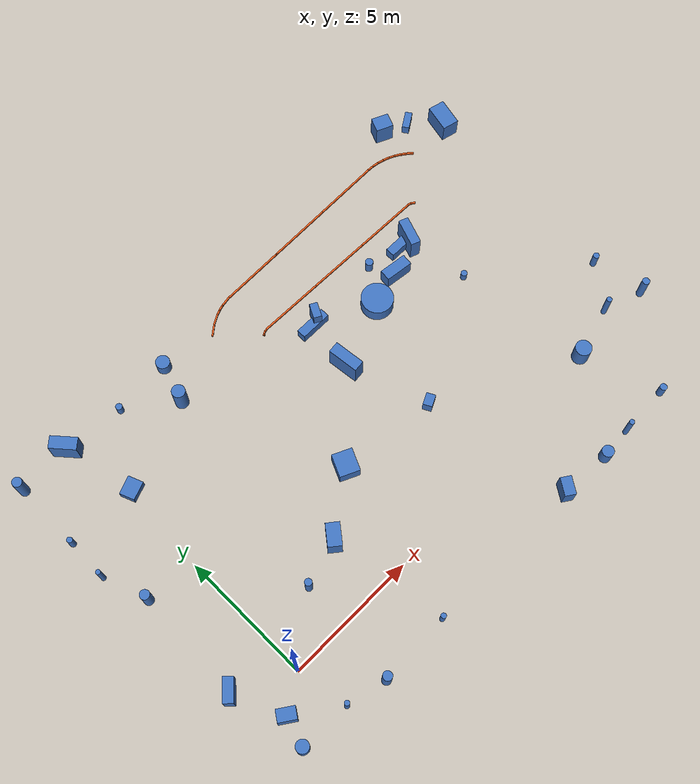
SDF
<sdf version="1.9">
 <world name="default">
  <model name="track_curb">
   <static>true</static>
   <link name="curb_link">
    <collision name="left0_0_0_collision">
     <pose>15.271344 9.368254 0.035000 0.000000 0.000000 2.502777</pose>
     <geometry><box><size>0.189289 0.060000 0.070000</size></box></geometry>
    </collision>
    <visual name="left0_0_0_visual">
     <pose>15.271344 9.368254 0.035000 0.000000 0.000000 2.502777</pose>
     <geometry><box><size>0.189289 0.060000 0.070000</size></box></geometry>
     <material><ambient>0.9 0.35 0.1 1</ambient><diffuse>0.9 0.35 0.1 1</diffuse></material>
    </visual>
    <collision name="left0_1_0_collision">
     <pose>15.157827 9.422156 0.035000 0.000000 0.000000 2.897335</pose>
     <geometry><box><size>0.187010 0.060000 0.070000</size></box></geometry>
    </collision>
    <visual name="left0_1_0_visual">
     <pose>15.157827 9.422156 0.035000 0.000000 0.000000 2.897335</pose>
     <geometry><box><size>0.187010 0.060000 0.070000</size></box></geometry>
     <material><ambient>0.9 0.35 0.1 1</ambient><diffuse>0.9 0.35 0.1 1</diffuse></material>
    </visual>
    <collision name="left0_2_0_collision">
     <pose>13.877469 9.456981 0.035000 0.000000 0.000000 3.125621</pose>
     <geometry><box><size>2.497787 0.060000 0.070000</size></box></geometry>
    </collision>
    <visual name="left0_2_0_visual">
     <pose>13.877469 9.456981 0.035000 0.000000 0.000000 3.125621</pose>
     <geometry><box><size>2.497787 0.060000 0.070000</size></box></geometry>
     <material><ambient>0.9 0.35 0.1 1</ambient><diffuse>0.9 0.35 0.1 1</diffuse></material>
    </visual>
    <collision name="left0_2_1_collision">
     <pose>11.439993 9.495915 0.035000 0.000000 0.000000 3.125621</pose>
     <geometry><box><size>2.497787 0.060000 0.070000</size></box></geometry>
    </collision>
    <visual name="left0_2_1_visual">
     <pose>11.439993 9.495915 0.035000 0.000000 0.000000 3.125621</pose>
     <geometry><box><size>2.497787 0.060000 0.070000</size></box></geometry>
     <material><ambient>0.9 0.35 0.1 1</ambient><diffuse>0.9 0.35 0.1 1</diffuse></material>
    </visual>
    <collision name="left0_2_2_collision">
     <pose>9.002516 9.534850 0.035000 0.000000 0.000000 3.125621</pose>
     <geometry><box><size>2.497787 0.060000 0.070000</size></box></geometry>
    </collision>
    <visual name="left0_2_2_visual">
     <pose>9.002516 9.534850 0.035000 0.000000 0.000000 3.125621</pose>
     <geometry><box><size>2.497787 0.060000 0.070000</size></box></geometry>
     <material><ambient>0.9 0.35 0.1 1</ambient><diffuse>0.9 0.35 0.1 1</diffuse></material>
    </visual>
    <collision name="left0_3_0_collision">
     <pose>7.711670 9.540087 0.035000 0.000000 0.000000 -2.946748</pose>
     <geometry><box><size>0.206997 0.060000 0.070000</size></box></geometry>
    </collision>
    <visual name="left0_3_0_visual">
     <pose>7.711670 9.540087 0.035000 0.000000 0.000000 -2.946748</pose>
     <geometry><box><size>0.206997 0.060000 0.070000</size></box></geometry>
     <material><ambient>0.9 0.35 0.1 1</ambient><diffuse>0.9 0.35 0.1 1</diffuse></material>
    </visual>
    <collision name="left0_4_0_collision">
     <pose>7.600947 9.503579 0.035000 0.000000 0.000000 -2.618331</pose>
     <geometry><box><size>0.149162 0.060000 0.070000</size></box></geometry>
    </collision>
    <visual name="left0_4_0_visual">
     <pose>7.600947 9.503579 0.035000 0.000000 0.000000 -2.618331</pose>
     <geometry><box><size>0.149162 0.060000 0.070000</size></box></geometry>
     <material><ambient>0.9 0.35 0.1 1</ambient><diffuse>0.9 0.35 0.1 1</diffuse></material>
    </visual>
    <collision name="left0_5_0_collision">
     <pose>7.551408 9.472403 0.035000 0.000000 0.000000 -2.457948</pose>
     <geometry><box><size>0.088178 0.060000 0.070000</size></box></geometry>
    </collision>
    <visual name="left0_5_0_visual">
     <pose>7.551408 9.472403 0.035000 0.000000 0.000000 -2.457948</pose>
     <geometry><box><size>0.088178 0.060000 0.070000</size></box></geometry>
     <material><ambient>0.9 0.35 0.1 1</ambient><diffuse>0.9 0.35 0.1 1</diffuse></material>
    </visual>
    <collision name="left0_6_0_collision">
     <pose>7.542045 9.458009 0.035000 0.000000 0.000000 -1.294159</pose>
     <geometry><box><size>0.071423 0.060000 0.070000</size></box></geometry>
    </collision>
    <visual name="left0_6_0_visual">
     <pose>7.542045 9.458009 0.035000 0.000000 0.000000 -1.294159</pose>
     <geometry><box><size>0.071423 0.060000 0.070000</size></box></geometry>
     <material><ambient>0.9 0.35 0.1 1</ambient><diffuse>0.9 0.35 0.1 1</diffuse></material>
    </visual>
    <collision name="right4_0_0_collision">
     <pose>16.748323 10.948203 0.035000 0.000000 0.000000 2.422302</pose>
     <geometry><box><size>0.272321 0.060000 0.070000</size></box></geometry>
    </collision>
    <visual name="right4_0_0_visual">
     <pose>16.748323 10.948203 0.035000 0.000000 0.000000 2.422302</pose>
     <geometry><box><size>0.272321 0.060000 0.070000</size></box></geometry>
     <material><ambient>0.9 0.35 0.1 1</ambient><diffuse>0.9 0.35 0.1 1</diffuse></material>
    </visual>
    <collision name="right4_1_0_collision">
     <pose>16.568221 11.090692 0.035000 0.000000 0.000000 2.515127</pose>
     <geometry><box><size>0.307473 0.060000 0.070000</size></box></geometry>
    </collision>
    <visual name="right4_1_0_visual">
     <pose>16.568221 11.090692 0.035000 0.000000 0.000000 2.515127</pose>
     <geometry><box><size>0.307473 0.060000 0.070000</size></box></geometry>
     <material><ambient>0.9 0.35 0.1 1</ambient><diffuse>0.9 0.35 0.1 1</diffuse></material>
    </visual>
    <collision name="right4_2_0_collision">
     <pose>16.361099 11.225360 0.035000 0.000000 0.000000 2.615095</pose>
     <geometry><box><size>0.307251 0.060000 0.070000</size></box></geometry>
    </collision>
    <visual name="right4_2_0_visual">
     <pose>16.361099 11.225360 0.035000 0.000000 0.000000 2.615095</pose>
     <geometry><box><size>0.307251 0.060000 0.070000</size></box></geometry>
     <material><ambient>0.9 0.35 0.1 1</ambient><diffuse>0.9 0.35 0.1 1</diffuse></material>
    </visual>
    <collision name="right4_3_0_collision">
     <pose>16.141768 11.338582 0.035000 0.000000 0.000000 2.715063</pose>
     <geometry><box><size>0.307028 0.060000 0.070000</size></box></geometry>
    </collision>
    <visual name="right4_3_0_visual">
     <pose>16.141768 11.338582 0.035000 0.000000 0.000000 2.715063</pose>
     <geometry><box><size>0.307028 0.060000 0.070000</size></box></geometry>
     <material><ambient>0.9 0.35 0.1 1</ambient><diffuse>0.9 0.35 0.1 1</diffuse></material>
    </visual>
    <collision name="right4_4_0_collision">
     <pose>15.929364 11.424333 0.035000 0.000000 0.000000 2.807892</pose>
     <geometry><box><size>0.271584 0.060000 0.070000</size></box></geometry>
    </collision>
    <visual name="right4_4_0_visual">
     <pose>15.929364 11.424333 0.035000 0.000000 0.000000 2.807892</pose>
     <geometry><box><size>0.271584 0.060000 0.070000</size></box></geometry>
     <material><ambient>0.9 0.35 0.1 1</ambient><diffuse>0.9 0.35 0.1 1</diffuse></material>
    </visual>
    <collision name="right4_5_0_collision">
     <pose>15.709660 11.488399 0.035000 0.000000 0.000000 2.900717</pose>
     <geometry><box><size>0.306614 0.060000 0.070000</size></box></geometry>
    </collision>
    <visual name="right4_5_0_visual">
     <pose>15.709660 11.488399 0.035000 0.000000 0.000000 2.900717</pose>
     <geometry><box><size>0.306614 0.060000 0.070000</size></box></geometry>
     <material><ambient>0.9 0.35 0.1 1</ambient><diffuse>0.9 0.35 0.1 1</diffuse></material>
    </visual>
    <collision name="right4_6_0_collision">
     <pose>15.467938 11.535116 0.035000 0.000000 0.000000 3.000685</pose>
     <geometry><box><size>0.306392 0.060000 0.070000</size></box></geometry>
    </collision>
    <visual name="right4_6_0_visual">
     <pose>15.467938 11.535116 0.035000 0.000000 0.000000 3.000685</pose>
     <geometry><box><size>0.306392 0.060000 0.070000</size></box></geometry>
     <material><ambient>0.9 0.35 0.1 1</ambient><diffuse>0.9 0.35 0.1 1</diffuse></material>
    </visual>
    <collision name="right4_7_0_collision">
     <pose>15.224878 11.557452 0.035000 0.000000 0.000000 3.100041</pose>
     <geometry><box><size>0.302380 0.060000 0.070000</size></box></geometry>
    </collision>
    <visual name="right4_7_0_visual">
     <pose>15.224878 11.557452 0.035000 0.000000 0.000000 3.100041</pose>
     <geometry><box><size>0.302380 0.060000 0.070000</size></box></geometry>
     <material><ambient>0.9 0.35 0.1 1</ambient><diffuse>0.9 0.35 0.1 1</diffuse></material>
    </visual>
    <collision name="right4_8_0_collision">
     <pose>13.857994 11.541765 0.035000 0.000000 0.000000 -3.124961</pose>
     <geometry><box><size>2.551941 0.060000 0.070000</size></box></geometry>
    </collision>
    <visual name="right4_8_0_visual">
     <pose>13.857994 11.541765 0.035000 0.000000 0.000000 -3.124961</pose>
     <geometry><box><size>2.551941 0.060000 0.070000</size></box></geometry>
     <material><ambient>0.9 0.35 0.1 1</ambient><diffuse>0.9 0.35 0.1 1</diffuse></material>
    </visual>
    <collision name="right4_8_1_collision">
     <pose>11.366398 11.500322 0.035000 0.000000 0.000000 -3.124961</pose>
     <geometry><box><size>2.551941 0.060000 0.070000</size></box></geometry>
    </collision>
    <visual name="right4_8_1_visual">
     <pose>11.366398 11.500322 0.035000 0.000000 0.000000 -3.124961</pose>
     <geometry><box><size>2.551941 0.060000 0.070000</size></box></geometry>
     <material><ambient>0.9 0.35 0.1 1</ambient><diffuse>0.9 0.35 0.1 1</diffuse></material>
    </visual>
    <collision name="right4_8_2_collision">
     <pose>8.874802 11.458879 0.035000 0.000000 0.000000 -3.124961</pose>
     <geometry><box><size>2.551941 0.060000 0.070000</size></box></geometry>
    </collision>
    <visual name="right4_8_2_visual">
     <pose>8.874802 11.458879 0.035000 0.000000 0.000000 -3.124961</pose>
     <geometry><box><size>2.551941 0.060000 0.070000</size></box></geometry>
     <material><ambient>0.9 0.35 0.1 1</ambient><diffuse>0.9 0.35 0.1 1</diffuse></material>
    </visual>
    <collision name="right4_9_0_collision">
     <pose>7.443772 11.406488 0.035000 0.000000 0.000000 -2.972256</pose>
     <geometry><box><size>0.435840 0.060000 0.070000</size></box></geometry>
    </collision>
    <visual name="right4_9_0_visual">
     <pose>7.443772 11.406488 0.035000 0.000000 0.000000 -2.972256</pose>
     <geometry><box><size>0.435840 0.060000 0.070000</size></box></geometry>
     <material><ambient>0.9 0.35 0.1 1</ambient><diffuse>0.9 0.35 0.1 1</diffuse></material>
    </visual>
    <collision name="right4_10_0_collision">
     <pose>7.160622 11.344637 0.035000 0.000000 0.000000 -2.842601</pose>
     <geometry><box><size>0.264927 0.060000 0.070000</size></box></geometry>
    </collision>
    <visual name="right4_10_0_visual">
     <pose>7.160622 11.344637 0.035000 0.000000 0.000000 -2.842601</pose>
     <geometry><box><size>0.264927 0.060000 0.070000</size></box></geometry>
     <material><ambient>0.9 0.35 0.1 1</ambient><diffuse>0.9 0.35 0.1 1</diffuse></material>
    </visual>
    <collision name="right4_11_0_collision">
     <pose>6.968035 11.275485 0.035000 0.000000 0.000000 -2.751091</pose>
     <geometry><box><size>0.264754 0.060000 0.070000</size></box></geometry>
    </collision>
    <visual name="right4_11_0_visual">
     <pose>6.968035 11.275485 0.035000 0.000000 0.000000 -2.751091</pose>
     <geometry><box><size>0.264754 0.060000 0.070000</size></box></geometry>
     <material><ambient>0.9 0.35 0.1 1</ambient><diffuse>0.9 0.35 0.1 1</diffuse></material>
    </visual>
    <collision name="right4_12_0_collision">
     <pose>6.710824 11.143423 0.035000 0.000000 0.000000 -2.621466</pose>
     <geometry><box><size>0.434623 0.060000 0.070000</size></box></geometry>
    </collision>
    <visual name="right4_12_0_visual">
     <pose>6.710824 11.143423 0.035000 0.000000 0.000000 -2.621466</pose>
     <geometry><box><size>0.434623 0.060000 0.070000</size></box></geometry>
     <material><ambient>0.9 0.35 0.1 1</ambient><diffuse>0.9 0.35 0.1 1</diffuse></material>
    </visual>
    <collision name="right4_13_0_collision">
     <pose>6.376118 10.911111 0.035000 0.000000 0.000000 -2.461604</pose>
     <geometry><box><size>0.502823 0.060000 0.070000</size></box></geometry>
    </collision>
    <visual name="right4_13_0_visual">
     <pose>6.376118 10.911111 0.035000 0.000000 0.000000 -2.461604</pose>
     <geometry><box><size>0.502823 0.060000 0.070000</size></box></geometry>
     <material><ambient>0.9 0.35 0.1 1</ambient><diffuse>0.9 0.35 0.1 1</diffuse></material>
    </visual>
   </link>
  </model>
  <model name="track_feature">
   <static>true</static>
   <link name="feature_link">
    <collision name="feat_box_1_collision">
     <pose>12.639290 7.755865 0.330038 0.000000 0.000000 3.019790</pose>
     <geometry><box><size>1.058222 0.423274 0.660077</size></box></geometry>
    </collision>
    <visual name="feat_box_1_visual">
     <pose>12.639290 7.755865 0.330038 0.000000 0.000000 3.019790</pose>
     <geometry><box><size>1.058222 0.423274 0.660077</size></box></geometry>
     <material><ambient>0.25 0.45 0.75 1</ambient><diffuse>0.25 0.45 0.75 1</diffuse></material>
    </visual>
    <collision name="feat_box_2_collision">
     <pose>0.279351 8.474213 0.176076 0.000000 0.000000 -1.197004</pose>
     <geometry><box><size>0.574998 0.694214 0.352152</size></box></geometry>
    </collision>
    <visual name="feat_box_2_visual">
     <pose>0.279351 8.474213 0.176076 0.000000 0.000000 -1.197004</pose>
     <geometry><box><size>0.574998 0.694214 0.352152</size></box></geometry>
     <material><ambient>0.25 0.45 0.75 1</ambient><diffuse>0.25 0.45 0.75 1</diffuse></material>
    </visual>
    <collision name="feat_box_4_collision">
     <pose>10.784718 -2.181877 0.403142 0.000000 0.000000 2.555760</pose>
     <geometry><box><size>0.409974 0.674986 0.806284</size></box></geometry>
    </collision>
    <visual name="feat_box_4_visual">
     <pose>10.784718 -2.181877 0.403142 0.000000 0.000000 2.555760</pose>
     <geometry><box><size>0.409974 0.674986 0.806284</size></box></geometry>
     <material><ambient>0.25 0.45 0.75 1</ambient><diffuse>0.25 0.45 0.75 1</diffuse></material>
    </visual>
    <collision name="feat_box_5_collision">
     <pose>16.598004 12.318466 0.431856 0.000000 0.000000 1.157170</pose>
     <geometry><box><size>0.557473 0.669891 0.863711</size></box></geometry>
    </collision>
    <visual name="feat_box_5_visual">
     <pose>16.598004 12.318466 0.431856 0.000000 0.000000 1.157170</pose>
     <geometry><box><size>0.557473 0.669891 0.863711</size></box></geometry>
     <material><ambient>0.25 0.45 0.75 1</ambient><diffuse>0.25 0.45 0.75 1</diffuse></material>
    </visual>
    <collision name="feat_box_7_collision">
     <pose>3.940306 2.268397 0.467089 0.000000 0.000000 0.898028</pose>
     <geometry><box><size>0.836948 0.509742 0.934179</size></box></geometry>
    </collision>
    <visual name="feat_box_7_visual">
     <pose>3.940306 2.268397 0.467089 0.000000 0.000000 0.898028</pose>
     <geometry><box><size>0.836948 0.509742 0.934179</size></box></geometry>
     <material><ambient>0.25 0.45 0.75 1</ambient><diffuse>0.25 0.45 0.75 1</diffuse></material>
    </visual>
    <collision name="feat_box_8_collision">
     <pose>-2.042347 1.082708 0.440779 0.000000 0.000000 0.819688</pose>
     <geometry><box><size>0.861431 0.366135 0.881558</size></box></geometry>
    </collision>
    <visual name="feat_box_8_visual">
     <pose>-2.042347 1.082708 0.440779 0.000000 0.000000 0.819688</pose>
     <geometry><box><size>0.861431 0.366135 0.881558</size></box></geometry>
     <material><ambient>0.25 0.45 0.75 1</ambient><diffuse>0.25 0.45 0.75 1</diffuse></material>
    </visual>
    <collision name="feat_box_10_collision">
     <pose>9.809354 3.382879 0.254682 0.000000 0.000000 -1.108631</pose>
     <geometry><box><size>0.347329 0.461572 0.509363</size></box></geometry>
    </collision>
    <visual name="feat_box_10_visual">
     <pose>9.809354 3.382879 0.254682 0.000000 0.000000 -1.108631</pose>
     <geometry><box><size>0.347329 0.461572 0.509363</size></box></geometry>
     <material><ambient>0.25 0.45 0.75 1</ambient><diffuse>0.25 0.45 0.75 1</diffuse></material>
    </visual>
    <collision name="feat_box_12_collision">
     <pose>-0.348791 11.138863 0.482820 0.000000 0.000000 -0.855922</pose>
     <geometry><box><size>0.993537 0.458591 0.965639</size></box></geometry>
    </collision>
    <visual name="feat_box_12_visual">
     <pose>-0.348791 11.138863 0.482820 0.000000 0.000000 -0.855922</pose>
     <geometry><box><size>0.993537 0.458591 0.965639</size></box></geometry>
     <material><ambient>0.25 0.45 0.75 1</ambient><diffuse>0.25 0.45 0.75 1</diffuse></material>
    </visual>
    <collision name="feat_box_15_collision">
     <pose>6.080824 3.821925 0.294301 0.000000 0.000000 1.138007</pose>
     <geometry><box><size>0.858884 0.764687 0.588602</size></box></geometry>
    </collision>
    <visual name="feat_box_15_visual">
     <pose>6.080824 3.821925 0.294301 0.000000 0.000000 1.138007</pose>
     <geometry><box><size>0.858884 0.764687 0.588602</size></box></geometry>
     <material><ambient>0.25 0.45 0.75 1</ambient><diffuse>0.25 0.45 0.75 1</diffuse></material>
    </visual>
    <collision name="feat_box_16_collision">
     <pose>-1.252297 -0.781731 0.395862 0.000000 0.000000 -2.167370</pose>
     <geometry><box><size>0.445202 0.665797 0.791723</size></box></geometry>
    </collision>
    <visual name="feat_box_16_visual">
     <pose>-1.252297 -0.781731 0.395862 0.000000 0.000000 -2.167370</pose>
     <geometry><box><size>0.445202 0.665797 0.791723</size></box></geometry>
     <material><ambient>0.25 0.45 0.75 1</ambient><diffuse>0.25 0.45 0.75 1</diffuse></material>
    </visual>
    <collision name="feat_box_18_collision">
     <pose>8.748058 6.458404 0.530079 0.000000 0.000000 1.677954</pose>
     <geometry><box><size>1.177132 0.425119 1.060159</size></box></geometry>
    </collision>
    <visual name="feat_box_18_visual">
     <pose>8.748058 6.458404 0.530079 0.000000 0.000000 1.677954</pose>
     <geometry><box><size>1.177132 0.425119 1.060159</size></box></geometry>
     <material><ambient>0.25 0.45 0.75 1</ambient><diffuse>0.25 0.45 0.75 1</diffuse></material>
    </visual>
    <collision name="feat_box_24_collision">
     <pose>9.284548 8.540532 0.457994 0.000000 0.000000 -0.491147</pose>
     <geometry><box><size>0.302029 0.562229 0.915989</size></box></geometry>
    </collision>
    <visual name="feat_box_24_visual">
     <pose>9.284548 8.540532 0.457994 0.000000 0.000000 -0.491147</pose>
     <geometry><box><size>0.302029 0.562229 0.915989</size></box></geometry>
     <material><ambient>0.25 0.45 0.75 1</ambient><diffuse>0.25 0.45 0.75 1</diffuse></material>
    </visual>
    <collision name="feat_box_25_collision">
     <pose>18.518752 10.916348 0.397110 0.000000 0.000000 -1.805734</pose>
     <geometry><box><size>1.033357 0.635933 0.794219</size></box></geometry>
    </collision>
    <visual name="feat_box_25_visual">
     <pose>18.518752 10.916348 0.397110 0.000000 0.000000 -1.805734</pose>
     <geometry><box><size>1.033357 0.635933 0.794219</size></box></geometry>
     <material><ambient>0.25 0.45 0.75 1</ambient><diffuse>0.25 0.45 0.75 1</diffuse></material>
    </visual>
    <collision name="feat_box_26_collision">
     <pose>13.912323 8.311295 0.505113 0.000000 0.000000 -1.924617</pose>
     <geometry><box><size>1.071921 0.373841 1.010225</size></box></geometry>
    </collision>
    <visual name="feat_box_26_visual">
     <pose>13.912323 8.311295 0.505113 0.000000 0.000000 -1.924617</pose>
     <geometry><box><size>1.071921 0.373841 1.010225</size></box></geometry>
     <material><ambient>0.25 0.45 0.75 1</ambient><diffuse>0.25 0.45 0.75 1</diffuse></material>
    </visual>
    <collision name="feat_box_36_collision">
     <pose>17.582097 11.913602 0.199766 0.000000 0.000000 0.580317</pose>
     <geometry><box><size>0.678236 0.270606 0.399531</size></box></geometry>
    </collision>
    <visual name="feat_box_36_visual">
     <pose>17.582097 11.913602 0.199766 0.000000 0.000000 0.580317</pose>
     <geometry><box><size>0.678236 0.270606 0.399531</size></box></geometry>
     <material><ambient>0.25 0.45 0.75 1</ambient><diffuse>0.25 0.45 0.75 1</diffuse></material>
    </visual>
    <collision name="landmark_1_collision">
     <pose>9.000000 8.400000 0.225000 0.000000 0.000000 0.000000</pose>
     <geometry><box><size>1.200000 0.350000 0.450000</size></box></geometry>
    </collision>
    <visual name="landmark_1_visual">
     <pose>9.000000 8.400000 0.225000 0.000000 0.000000 0.000000</pose>
     <geometry><box><size>1.200000 0.350000 0.450000</size></box></geometry>
     <material><ambient>0.25 0.45 0.75 1</ambient><diffuse>0.25 0.45 0.75 1</diffuse></material>
    </visual>
    <collision name="landmark_2_collision">
     <pose>13.600000 8.400000 0.225000 0.000000 0.000000 0.000000</pose>
     <geometry><box><size>1.200000 0.350000 0.450000</size></box></geometry>
    </collision>
    <visual name="landmark_2_visual">
     <pose>13.600000 8.400000 0.225000 0.000000 0.000000 0.000000</pose>
     <geometry><box><size>1.200000 0.350000 0.450000</size></box></geometry>
     <material><ambient>0.25 0.45 0.75 1</ambient><diffuse>0.25 0.45 0.75 1</diffuse></material>
    </visual>
    <collision name="feat_cyl_3_collision">
     <pose>4.600586 -2.188813 0.329742 0.000000 0.000000 0.000000</pose>
     <geometry><cylinder><radius>0.097606</radius><length>0.659485</length></cylinder></geometry>
    </collision>
    <visual name="feat_cyl_3_visual">
     <pose>4.600586 -2.188813 0.329742 0.000000 0.000000 0.000000</pose>
     <geometry><cylinder><radius>0.097606</radius><length>0.659485</length></cylinder></geometry>
     <material><ambient>0.25 0.45 0.75 1</ambient><diffuse>0.25 0.45 0.75 1</diffuse></material>
    </visual>
    <collision name="feat_cyl_6_collision">
     <pose>16.949693 1.321475 0.538627 0.000000 0.000000 0.000000</pose>
     <geometry><cylinder><radius>0.100593</radius><length>1.077254</length></cylinder></geometry>
    </collision>
    <visual name="feat_cyl_6_visual">
     <pose>16.949693 1.321475 0.538627 0.000000 0.000000 0.000000</pose>
     <geometry><cylinder><radius>0.100593</radius><length>1.077254</length></cylinder></geometry>
     <material><ambient>0.25 0.45 0.75 1</ambient><diffuse>0.25 0.45 0.75 1</diffuse></material>
    </visual>
    <collision name="feat_cyl_9_collision">
     <pose>-1.878088 5.219361 0.520360 0.000000 0.000000 0.000000</pose>
     <geometry><cylinder><radius>0.178732</radius><length>1.040721</length></cylinder></geometry>
    </collision>
    <visual name="feat_cyl_9_visual">
     <pose>-1.878088 5.219361 0.520360 0.000000 0.000000 0.000000</pose>
     <geometry><cylinder><radius>0.178732</radius><length>1.040721</length></cylinder></geometry>
     <material><ambient>0.25 0.45 0.75 1</ambient><diffuse>0.25 0.45 0.75 1</diffuse></material>
    </visual>
    <collision name="feat_cyl_11_collision">
     <pose>12.732874 -2.332813 0.342586 0.000000 0.000000 0.000000</pose>
     <geometry><cylinder><radius>0.221294</radius><length>0.685172</length></cylinder></geometry>
    </collision>
    <visual name="feat_cyl_11_visual">
     <pose>12.732874 -2.332813 0.342586 0.000000 0.000000 0.000000</pose>
     <geometry><cylinder><radius>0.221294</radius><length>0.685172</length></cylinder></geometry>
     <material><ambient>0.25 0.45 0.75 1</ambient><diffuse>0.25 0.45 0.75 1</diffuse></material>
    </visual>
    <collision name="feat_cyl_13_collision">
     <pose>14.347416 5.906214 0.182492 0.000000 0.000000 0.000000</pose>
     <geometry><cylinder><radius>0.117041</radius><length>0.364984</length></cylinder></geometry>
    </collision>
    <visual name="feat_cyl_13_visual">
     <pose>14.347416 5.906214 0.182492 0.000000 0.000000 0.000000</pose>
     <geometry><cylinder><radius>0.117041</radius><length>0.364984</length></cylinder></geometry>
     <material><ambient>0.25 0.45 0.75 1</ambient><diffuse>0.25 0.45 0.75 1</diffuse></material>
    </visual>
    <collision name="feat_cyl_14_collision">
     <pose>15.945334 -2.171955 0.306854 0.000000 0.000000 0.000000</pose>
     <geometry><cylinder><radius>0.130943</radius><length>0.613709</length></cylinder></geometry>
    </collision>
    <visual name="feat_cyl_14_visual">
     <pose>15.945334 -2.171955 0.306854 0.000000 0.000000 0.000000</pose>
     <geometry><cylinder><radius>0.130943</radius><length>0.613709</length></cylinder></geometry>
     <material><ambient>0.25 0.45 0.75 1</ambient><diffuse>0.25 0.45 0.75 1</diffuse></material>
    </visual>
    <collision name="feat_cyl_17_collision">
     <pose>1.937383 10.968439 0.222637 0.000000 0.000000 0.000000</pose>
     <geometry><cylinder><radius>0.121931</radius><length>0.445275</length></cylinder></geometry>
    </collision>
    <visual name="feat_cyl_17_visual">
     <pose>1.937383 10.968439 0.222637 0.000000 0.000000 0.000000</pose>
     <geometry><cylinder><radius>0.121931</radius><length>0.445275</length></cylinder></geometry>
     <material><ambient>0.25 0.45 0.75 1</ambient><diffuse>0.25 0.45 0.75 1</diffuse></material>
    </visual>
    <collision name="feat_cyl_19_collision">
     <pose>-1.582676 -1.849337 0.356050 0.000000 0.000000 0.000000</pose>
     <geometry><cylinder><radius>0.236233</radius><length>0.712101</length></cylinder></geometry>
    </collision>
    <visual name="feat_cyl_19_visual">
     <pose>-1.582676 -1.849337 0.356050 0.000000 0.000000 0.000000</pose>
     <geometry><cylinder><radius>0.236233</radius><length>0.712101</length></cylinder></geometry>
     <material><ambient>0.25 0.45 0.75 1</ambient><diffuse>0.25 0.45 0.75 1</diffuse></material>
    </visual>
    <collision name="feat_cyl_20_collision">
     <pose>18.152635 2.872327 0.339768 0.000000 0.000000 0.000000</pose>
     <geometry><cylinder><radius>0.114547</radius><length>0.679537</length></cylinder></geometry>
    </collision>
    <visual name="feat_cyl_20_visual">
     <pose>18.152635 2.872327 0.339768 0.000000 0.000000 0.000000</pose>
     <geometry><cylinder><radius>0.114547</radius><length>0.679537</length></cylinder></geometry>
     <material><ambient>0.25 0.45 0.75 1</ambient><diffuse>0.25 0.45 0.75 1</diffuse></material>
    </visual>
    <collision name="feat_cyl_21_collision">
     <pose>4.143815 11.094112 0.264145 0.000000 0.000000 0.000000</pose>
     <geometry><cylinder><radius>0.259900</radius><length>0.528291</length></cylinder></geometry>
    </collision>
    <visual name="feat_cyl_21_visual">
     <pose>4.143815 11.094112 0.264145 0.000000 0.000000 0.000000</pose>
     <geometry><cylinder><radius>0.259900</radius><length>0.528291</length></cylinder></geometry>
     <material><ambient>0.25 0.45 0.75 1</ambient><diffuse>0.25 0.45 0.75 1</diffuse></material>
    </visual>
    <collision name="feat_cyl_22_collision">
     <pose>12.156014 8.649866 0.262049 0.000000 0.000000 0.000000</pose>
     <geometry><cylinder><radius>0.145643</radius><length>0.524097</length></cylinder></geometry>
    </collision>
    <visual name="feat_cyl_22_visual">
     <pose>12.156014 8.649866 0.262049 0.000000 0.000000 0.000000</pose>
     <geometry><cylinder><radius>0.145643</radius><length>0.524097</length></cylinder></geometry>
     <material><ambient>0.25 0.45 0.75 1</ambient><diffuse>0.25 0.45 0.75 1</diffuse></material>
    </visual>
    <collision name="feat_cyl_23_collision">
     <pose>3.691648 9.659883 0.569830 0.000000 0.000000 0.000000</pose>
     <geometry><cylinder><radius>0.249498</radius><length>1.139660</length></cylinder></geometry>
    </collision>
    <visual name="feat_cyl_23_visual">
     <pose>3.691648 9.659883 0.569830 0.000000 0.000000 0.000000</pose>
     <geometry><cylinder><radius>0.249498</radius><length>1.139660</length></cylinder></geometry>
     <material><ambient>0.25 0.45 0.75 1</ambient><diffuse>0.25 0.45 0.75 1</diffuse></material>
    </visual>
    <collision name="feat_cyl_27_collision">
     <pose>-2.460548 6.876080 0.508994 0.000000 0.000000 0.000000</pose>
     <geometry><cylinder><radius>0.088500</radius><length>1.017987</length></cylinder></geometry>
    </collision>
    <visual name="feat_cyl_27_visual">
     <pose>-2.460548 6.876080 0.508994 0.000000 0.000000 0.000000</pose>
     <geometry><cylinder><radius>0.088500</radius><length>1.017987</length></cylinder></geometry>
     <material><ambient>0.25 0.45 0.75 1</ambient><diffuse>0.25 0.45 0.75 1</diffuse></material>
    </visual>
    <collision name="feat_cyl_28_collision">
     <pose>2.207614 1.719554 0.474230 0.000000 0.000000 0.000000</pose>
     <geometry><cylinder><radius>0.133858</radius><length>0.948460</length></cylinder></geometry>
    </collision>
    <visual name="feat_cyl_28_visual">
     <pose>2.207614 1.719554 0.474230 0.000000 0.000000 0.000000</pose>
     <geometry><cylinder><radius>0.133858</radius><length>0.948460</length></cylinder></geometry>
     <material><ambient>0.25 0.45 0.75 1</ambient><diffuse>0.25 0.45 0.75 1</diffuse></material>
    </visual>
    <collision name="feat_cyl_29_collision">
     <pose>18.440880 0.855160 0.529392 0.000000 0.000000 0.000000</pose>
     <geometry><cylinder><radius>0.137709</radius><length>1.058784</length></cylinder></geometry>
    </collision>
    <visual name="feat_cyl_29_visual">
     <pose>18.440880 0.855160 0.529392 0.000000 0.000000 0.000000</pose>
     <geometry><cylinder><radius>0.137709</radius><length>1.058784</length></cylinder></geometry>
     <material><ambient>0.25 0.45 0.75 1</ambient><diffuse>0.25 0.45 0.75 1</diffuse></material>
    </visual>
    <collision name="feat_cyl_30_collision">
     <pose>-2.415133 8.489460 0.323254 0.000000 0.000000 0.000000</pose>
     <geometry><cylinder><radius>0.106670</radius><length>0.646509</length></cylinder></geometry>
    </collision>
    <visual name="feat_cyl_30_visual">
     <pose>-2.415133 8.489460 0.323254 0.000000 0.000000 0.000000</pose>
     <geometry><cylinder><radius>0.106670</radius><length>0.646509</length></cylinder></geometry>
     <material><ambient>0.25 0.45 0.75 1</ambient><diffuse>0.25 0.45 0.75 1</diffuse></material>
    </visual>
    <collision name="feat_cyl_31_collision">
     <pose>13.951009 -2.258323 0.556350 0.000000 0.000000 0.000000</pose>
     <geometry><cylinder><radius>0.095429</radius><length>1.112701</length></cylinder></geometry>
    </collision>
    <visual name="feat_cyl_31_visual">
     <pose>13.951009 -2.258323 0.556350 0.000000 0.000000 0.000000</pose>
     <geometry><cylinder><radius>0.095429</radius><length>1.112701</length></cylinder></geometry>
     <material><ambient>0.25 0.45 0.75 1</ambient><diffuse>0.25 0.45 0.75 1</diffuse></material>
    </visual>
    <collision name="feat_cyl_32_collision">
     <pose>14.985311 0.772652 0.421128 0.000000 0.000000 0.000000</pose>
     <geometry><cylinder><radius>0.301136</radius><length>0.842256</length></cylinder></geometry>
    </collision>
    <visual name="feat_cyl_32_visual">
     <pose>14.985311 0.772652 0.421128 0.000000 0.000000 0.000000</pose>
     <geometry><cylinder><radius>0.301136</radius><length>0.842256</length></cylinder></geometry>
     <material><ambient>0.25 0.45 0.75 1</ambient><diffuse>0.25 0.45 0.75 1</diffuse></material>
    </visual>
    <collision name="feat_cyl_33_collision">
     <pose>1.848057 -2.266543 0.588026 0.000000 0.000000 0.000000</pose>
     <geometry><cylinder><radius>0.170135</radius><length>1.176052</length></cylinder></geometry>
    </collision>
    <visual name="feat_cyl_33_visual">
     <pose>1.848057 -2.266543 0.588026 0.000000 0.000000 0.000000</pose>
     <geometry><cylinder><radius>0.170135</radius><length>1.176052</length></cylinder></geometry>
     <material><ambient>0.25 0.45 0.75 1</ambient><diffuse>0.25 0.45 0.75 1</diffuse></material>
    </visual>
    <collision name="feat_cyl_34_collision">
     <pose>-2.371496 11.095588 0.579647 0.000000 0.000000 0.000000</pose>
     <geometry><cylinder><radius>0.181868</radius><length>1.159294</length></cylinder></geometry>
    </collision>
    <visual name="feat_cyl_34_visual">
     <pose>-2.371496 11.095588 0.579647 0.000000 0.000000 0.000000</pose>
     <geometry><cylinder><radius>0.181868</radius><length>1.159294</length></cylinder></geometry>
     <material><ambient>0.25 0.45 0.75 1</ambient><diffuse>0.25 0.45 0.75 1</diffuse></material>
    </visual>
    <collision name="feat_cyl_35_collision">
     <pose>0.351594 -1.922661 0.463418 0.000000 0.000000 0.000000</pose>
     <geometry><cylinder><radius>0.094337</radius><length>0.926837</length></cylinder></geometry>
    </collision>
    <visual name="feat_cyl_35_visual">
     <pose>0.351594 -1.922661 0.463418 0.000000 0.000000 0.000000</pose>
     <geometry><cylinder><radius>0.094337</radius><length>0.926837</length></cylinder></geometry>
     <material><ambient>0.25 0.45 0.75 1</ambient><diffuse>0.25 0.45 0.75 1</diffuse></material>
    </visual>
    <collision name="landmark_0_collision">
     <pose>11.300000 7.400000 0.300000 0.000000 0.000000 0.000000</pose>
     <geometry><cylinder><radius>0.600000</radius><length>0.600000</length></cylinder></geometry>
    </collision>
    <visual name="landmark_0_visual">
     <pose>11.300000 7.400000 0.300000 0.000000 0.000000 0.000000</pose>
     <geometry><cylinder><radius>0.600000</radius><length>0.600000</length></cylinder></geometry>
     <material><ambient>0.25 0.45 0.75 1</ambient><diffuse>0.25 0.45 0.75 1</diffuse></material>
    </visual>
   </link>
  </model>
 </world>
</sdf>
